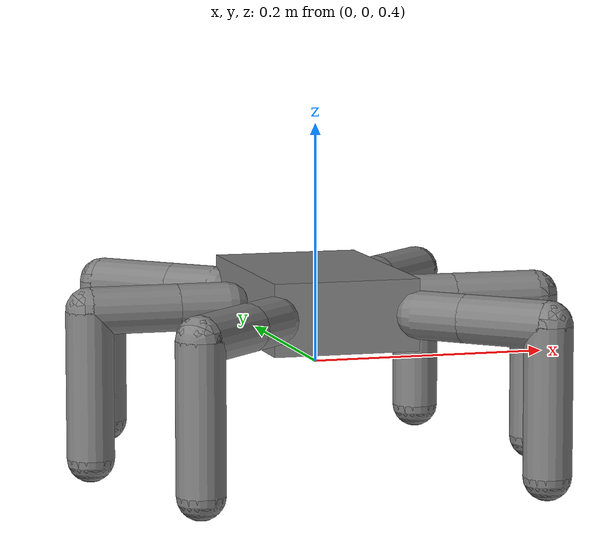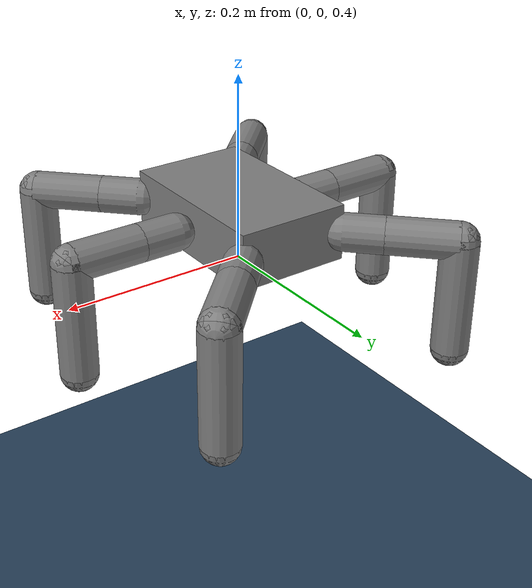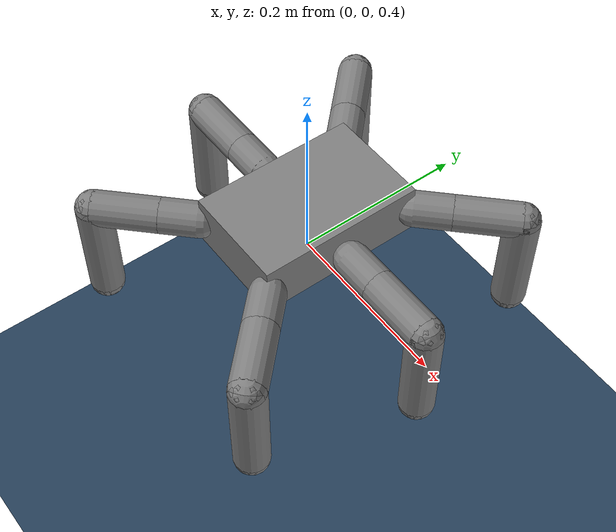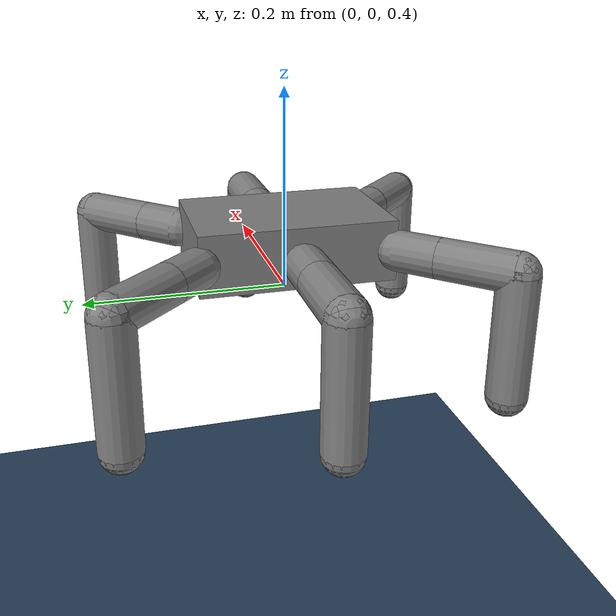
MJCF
<mujoco model="hexapod scene">
  <include file="hexapod.xml"/>

  <visual>
    <headlight diffuse="0.6 0.6 0.6" ambient="0.3 0.3 0.3" specular="0 0 0"/>
    <rgba haze="0.15 0.25 0.35 1"/>
    <global azimuth="-130" elevation="-20"/>
  </visual>

  <asset>
    <texture type="skybox" builtin="gradient" rgb1="0.3 0.5 0.7" rgb2="0 0 0" width="512" height="3072"/>
    <texture type="2d" name="groundplane" builtin="checker" mark="edge" rgb1="0.2 0.3 0.4" rgb2="0.1 0.2 0.3"
      markrgb="0.8 0.8 0.8" width="300" height="300"/>
    <material name="groundplane" texture="groundplane" texuniform="true" texrepeat="5 5" reflectance="0.2"/>
  </asset>

  <worldbody>
    <light pos="0 0 0.5" dir="0 0 -1" directional="true"/>
    <geom name="floor" size="0 0 0.05" type="plane" material="groundplane" conaffinity="1" condim="3" euler="-6.4 -2.4 0" friction="1 0.5 0.5"/>

  </worldbody>
</mujoco>

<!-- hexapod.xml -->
<mujoco model="ant">
  <compiler angle="degree" coordinate="local" inertiafromgeom="true"/>
  <option timestep="0.01" integrator="RK4" />

  <default>
    <joint armature="1" damping="1" limited="true"/>
    <geom contype="0" conaffinity="0" condim="3" density="5.0" friction="1 0.5 0.5" />
  </default>

  <asset>
    <texture builtin="gradient" height="100" rgb1="1 1 1" rgb2="0 0 0" type="skybox" width="100"/>
    <texture builtin="flat" height="1278" mark="cross" markrgb="1 1 1" name="texgeom" random="0.01" rgb1="0.8 0.6 0.4" rgb2="0.8 0.6 0.4" type="cube" width="127"/>
    <texture builtin="checker" height="100" name="texplane" rgb1="0 0 0" rgb2="0.8 0.8 0.8" type="2d" width="100"/>
    <material name="MatPlane" reflectance="0.5" shininess="1" specular="1" texrepeat="60 60" texture="texplane"/>
    <material name="geom" texture="texgeom" texuniform="true"/>
  </asset>

  <worldbody>
    <body name="torso" pos="0 0 0.45">
      <geom name="torso_geom" pos="0 0 0" size="0.0615 0.0956 0.03" type="box"/>
      <joint armature="0" damping="0" limited="false" margin="0.01" name="root" pos="0 0 0" type="free"/>

      <body name="front_left_leg" pos="0 0 0">
        <body name="aux_1" pos="0.0615 0.0956 0">
          <joint axis="0 0 1" name="hip_1" pos="0.0 0.0 0.0" range="-30 30" type="hinge"/>
          <geom fromto="0.0 0.0 0.0 0.0297 0.0297 0.0" name="left_leg_geom" size="0.02" type="capsule"/>
          <body pos="0.0297 0.0297 0">
            <joint axis="-1 1 0" name="ankle_1" pos="0.0 0.0 0.0" range="-30 30" type="hinge"/>
            <geom fromto="0.0 0.0 0.0 0.0523 0.0523 0.0" name="left_ankle_geom" size="0.02" type="capsule"/>
            <body pos="0.0523 0.0523 0">
              <joint axis="-1 1 0" name="calf_1" pos="0.0 0.0 0.0" range="-30 30" type="hinge"/>
              <geom fromto="0.0 0.0 0.0 0 0 -0.123" name="left_calf_geom" size="0.02" type="capsule"/>
              <geom name="left_foot_geom" contype="1" pos="0 0 -0.123" size="0.02" type="sphere" mass="0.1"/>
              <site name="site_foot_1" pos="0 0 -0.123"/>
            </body>
          </body>
        </body>
      </body>

      <body name="front_right_leg" pos="0 0 0">
        <body name="aux_2" pos="-0.0615 0.0956 0">
          <joint axis="0 0 1" name="hip_2" pos="0.0 0.0 0.0" range="-30 30" type="hinge"/>
          <geom fromto="0.0 0.0 0.0 -0.0297 0.0297 0.0" name="right_leg_geom" size="0.02" type="capsule"/>
          <body pos="-0.0297 0.0297 0">
            <joint axis="1 1 0" name="ankle_2" pos="0.0 0.0 0.0" range="-30 30" type="hinge"/>
            <geom fromto="0.0 0.0 0.0 -0.0523 0.0523 0.0" name="right_ankle_geom" size="0.02" type="capsule"/>
            <body pos="-0.0523 0.0523 0">
              <joint axis="1 1 0" name="calf_2" pos="0.0 0.0 0.0" range="-30 30" type="hinge"/>
              <geom fromto="0.0 0.0 0.0 0 0 -0.123" name="right_calf_geom" size="0.02" type="capsule"/>
              <geom name="right_foot_geom" contype="1" pos="0 0 -0.123" size="0.02" type="sphere" mass="0.1" />
              <site name="site_foot_2" pos="0 0 -0.123"/>
            </body>
          </body>
        </body>
      </body>

      <body name="left_back_leg" pos="0 0 0">
        <body name="aux_3" pos="-0.0615 -0.0956 0">
          <joint axis="0 0 1" name="hip_3" pos="0.0 0.0 0.0" range="-30 30" type="hinge"/>
          <geom fromto="0.0 0.0 0.0 -0.0297 -0.0297 0.0" name="back_leg_geom" size="0.02" type="capsule"/>
          <body pos="-0.0297 -0.0297 0">
            <joint axis="-1 1 0" name="ankle_3" pos="0.0 0.0 0.0" range="-30 30" type="hinge"/>
            <geom fromto="0.0 0.0 0.0 -0.0523 -0.0523 0.0" name="third_ankle_geom" size="0.02" type="capsule"/>
            <body pos="-0.0523 -0.0523 0">
              <joint axis="-1 1 0" name="calf_3" pos="0.0 0.0 0.0" range="-30 30" type="hinge"/>
              <geom fromto="0.0 0.0 0.0 0 0 -0.123" name="third_calf_geom" size="0.02" type="capsule"/>
              <geom name="third_foot_geom" contype="1" pos="0 0 -0.123" size="0.02" type="sphere" mass="0.1" />
              <site name="site_foot_3" pos="0 0 -0.123"/>
            </body>
          </body>
        </body>
      </body>

      <body name="right_back_leg" pos="0 0 0">
        <body name="aux_4" pos="0.0615 -0.0956 0">
          <joint axis="0 0 1" name="hip_4" pos="0.0 0.0 0.0" range="-30 30" type="hinge"/>
          <geom fromto="0.0 0.0 0.0 0.0297 -0.0297 0.0" name="rightback_leg_geom" size="0.02" type="capsule"/>
          <body pos="0.0297 -0.0297 0">
            <joint axis="1 1 0" name="ankle_4" pos="0.0 0.0 0.0" range="-30 30" type="hinge"/>
            <geom fromto="0.0 0.0 0.0 0.0523 -0.0523 0.0" name="fourth_ankle_geom" size="0.02" type="capsule"/>
            <body pos="0.0523 -0.0523 0">
              <joint axis="1 1 0" name="calf_4" pos="0.0 0.0 0.0" range="-30 30" type="hinge"/>
              <geom fromto="0.0 0.0 0.0 0 0 -0.123" name="fourth_calf_geom" size="0.02" type="capsule"/>
              <geom name="fourth_foot_geom" contype="1" pos="0 0 -0.123" size="0.02" type="sphere" mass="0.1" />
              <site name="site_foot_4" pos="0 0 -0.123"/>
            </body>
          </body>
        </body>
      </body>

      <body name="middle_left_leg" pos="0 0 0">
        <body name="aux_5" pos="0.0775 0.0 0">
          <joint axis="0 0 1" name="hip_5" pos="0.0 0.0 0.0" range="-30 30" type="hinge"/>
          <geom fromto="0.0 0.0 0.0 0.042 0.0 0.0" name="middle1_leg_geom" size="0.02" type="capsule"/>
          <body pos="0.042 0.0 0">
            <joint axis="0 1 0" name="ankle_5" pos="0.0 0.0 0.0" range="-30 30" type="hinge"/>
            <geom fromto="0.0 0.0 0.0 0.074 0.0 0.0" name="middle1_ankle_geom" size="0.02" type="capsule"/>
            <body pos="0.074 0 0">
              <joint axis="0 1 0" name="calf_5" pos="0.0 0.0 0.0" range="-30 30" type="hinge"/>
              <geom fromto="0.0 0.0 0.0 0.0 0.0 -0.123" name="middle1_calf_geom" size="0.02" type="capsule"/>
              <geom name="middle1_foot_geom" contype="1" pos="0.0 0 -0.123" size="0.02" type="sphere" mass="0.1" />
              <site name="site_foot_5" pos="0 0 -0.123"/>
            </body>
          </body>
        </body>
      </body>

      <body name="middle_right_leg" pos="0 0 0">
        <body name="aux_6" pos="-0.0775 0.0 0">
          <joint axis="0 0 1" name="hip_6" pos="0.0 0.0 0.0" range="-30 30" type="hinge"/>
          <geom fromto="0.0 0.0 0.0 -0.042 0.0 0.0" name="middle2_leg_geom" size="0.02" type="capsule"/>
          <body pos="-0.042 0.0 0">
            <joint axis="0 1 0" name="ankle_6" pos="0.0 0.0 0.0" range="-30 30" type="hinge"/>
            <geom fromto="0.0 0.0 0.0 -0.074 0.0 0.0" name="middle2_ankle_geom" size="0.02" type="capsule"/>
            <body pos="-0.074 0.0 0">
              <joint axis="0 1 0" name="calf_6" pos="0.0 0.0 0.0" range="-30 30" type="hinge"/>
              <geom fromto="0.0 0.0 0.0 0.0 0.0 -0.123" name="middle2_calf_geom" size="0.02" type="capsule"/>
              <geom name="middle2_foot_geom" contype="1" pos="0.0 0 -0.123" size="0.02" type="sphere" mass="0.1" />
              <site name="site_foot_6" pos="0 0 -0.123"/>
            </body>
          </body>
        </body>
      </body>

    </body>
  </worldbody>

  <actuator>
    <motor ctrllimited="true" ctrlrange="-1.0 1.0" joint="hip_1" gear="150"/>
    <motor ctrllimited="true" ctrlrange="-1.0 1.0" joint="ankle_1" gear="150"/>
    <motor ctrllimited="true" ctrlrange="-1.0 1.0" joint="calf_1" gear="150"/>
    <motor ctrllimited="true" ctrlrange="-1.0 1.0" joint="hip_2" gear="150"/>
    <motor ctrllimited="true" ctrlrange="-1.0 1.0" joint="ankle_2" gear="150"/>
    <motor ctrllimited="true" ctrlrange="-1.0 1.0" joint="calf_2" gear="150"/>
    <motor ctrllimited="true" ctrlrange="-1.0 1.0" joint="hip_3" gear="150"/>
    <motor ctrllimited="true" ctrlrange="-1.0 1.0" joint="ankle_3" gear="150"/>
    <motor ctrllimited="true" ctrlrange="-1.0 1.0" joint="calf_3" gear="150"/>
    <motor ctrllimited="true" ctrlrange="-1.0 1.0" joint="hip_4" gear="150"/>
    <motor ctrllimited="true" ctrlrange="-1.0 1.0" joint="ankle_4" gear="150"/>
    <motor ctrllimited="true" ctrlrange="-1.0 1.0" joint="calf_4" gear="150"/>
    <motor ctrllimited="true" ctrlrange="-1.0 1.0" joint="hip_5" gear="150"/>
    <motor ctrllimited="true" ctrlrange="-1.0 1.0" joint="ankle_5" gear="150"/>
    <motor ctrllimited="true" ctrlrange="-1.0 1.0" joint="calf_5" gear="150"/>
    <motor ctrllimited="true" ctrlrange="-1.0 1.0" joint="hip_6" gear="150"/>
    <motor ctrllimited="true" ctrlrange="-1.0 1.0" joint="ankle_6" gear="150"/>
    <motor ctrllimited="true" ctrlrange="-1.0 1.0" joint="calf_6" gear="150"/>
  </actuator>

  <sensor>
  <touch name="sensor_front_left"  site="site_foot_1"/>
  <touch name="sensor_front_right" site="site_foot_2"/>
  <touch name="sensor_back_left"   site="site_foot_3"/>
  <touch name="sensor_back_right"  site="site_foot_4"/>
  <touch name="sensor_middle_left" site="site_foot_5"/>
  <touch name="sensor_middle_right" site="site_foot_6"/>
</sensor>

</mujoco>
